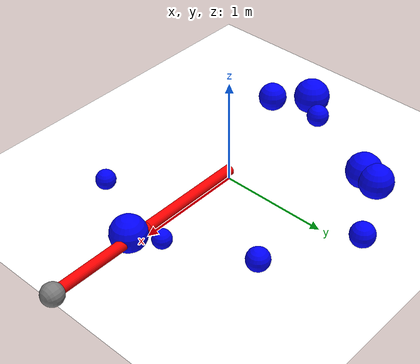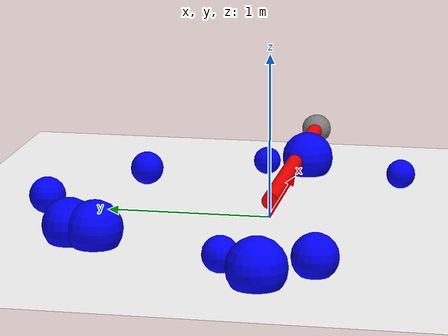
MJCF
<mujoco>
	<asset>
		<material name="red"   rgba="1 0 0 1"/>
		<material name="green" rgba="0 1 0 1"/>
		<material name="blue"  rgba="0 0 1 1"/>
		<material name="white" rgba="1 1 1 1"/>
		<material name="gray"  rgba=".5 .5 .5 1"/>
	</asset>

    <worldbody>
        <light diffuse=".5 .5 .5" pos="0 0 10" dir="0 0 -1"/>
        <geom type="plane" size="2 2 0.1" rgba="1 1 1 1"/>

        <body name="link 0" pos="0.5 0 0.1" euler="0 90 0">
            <joint name="joint 0" type="hinge" axis="-1 0 0" pos="0 0 -0.5"/>
            <geom name="geom link 0" type="cylinder" size="0.05 0.5" material="red"/>
            <body name="link 1" pos="0 0 1.0" euler="0 0 0">
                <joint name="joint 1" type="hinge" axis="-1 0 0" pos="0 0 -0.5"/>
                <geom name="geom link 1" type="cylinder" size="0.05 0.5" material="red"/>
                <site name="tip" size="0.1" pos="0 0 0.5"/>
            </body>
        </body>

        <body name="link 0 shade" pos="0.5 0 0.1" euler="0 90 0">
            <joint name="joint 0 shade" type="hinge" axis="-1 0 0" pos="0 0 -0.5"/>
            <geom name="geom link 0 shade" type="cylinder" size="0.05 0.5" material="green"/>
            <body name="link 1 shade" pos="0 0 1.0" euler="0 0 0">
                <joint name="joint 1 shade" type="hinge" axis="-1 0 0" pos="0 0 -0.5"/>
                <geom name="geom link 1 shade" type="cylinder" size="0.05 0.5" material="green"/>
            </body>
        </body>

        <body name="obstacle 0">
            <geom name="geom obstacle 0" type="sphere" size="0.09155754995403356" pos="0.8181105194033655 -0.7100825098286898 0.1" material="blue"/>
        </body>
        <body name="obstacle 1">
            <geom name="geom obstacle 1" type="sphere" size="0.10576952262704495" pos="-1.1610005011550526 0.08392072669884287 0.1" material="blue"/>
        </body>
        <body name="obstacle 2">
            <geom name="geom obstacle 2" type="sphere" size="0.16716003222450507" pos="-0.7792648913033293 0.8914153550871124 0.1" material="blue"/>
        </body>
        <body name="obstacle 3">
            <geom name="geom obstacle 3" type="sphere" size="0.17406166086784924" pos="-1.3784533882763146 -0.1570101104322026 0.1" material="blue"/>
        </body>
        <body name="obstacle 4">
            <geom name="geom obstacle 4" type="sphere" size="0.1051144145592004" pos="0.6789172825174297 0.9123774108466245 0.1" material="blue"/>
        </body>
        <body name="obstacle 5">
            <geom name="geom obstacle 5" type="sphere" size="0.13602039864201368" pos="-1.117351127828064 -0.4376778510702355 0.1" material="blue"/>
        </body>
        <body name="obstacle 6">
            <geom name="geom obstacle 6" type="sphere" size="0.11284059623151965" pos="-0.10053590386698552 1.3601516502228166 0.1" material="blue"/>
        </body>
        <body name="obstacle 7">
            <geom name="geom obstacle 7" type="sphere" size="0.16556442138439958" pos="1.1555692409288683 -0.06214603639689242 0.1" material="blue"/>
        </body>
        <body name="obstacle 8">
            <geom name="geom obstacle 8" type="sphere" size="0.16028417221759453" pos="-0.7283862947487094 1.0568147538507917 0.1" material="blue"/>
        </body>
        <body name="obstacle 9">
            <geom name="geom obstacle 9" type="sphere" size="0.08726610527160886" pos="1.019468803710156 0.18449356757439084 0.1" material="blue"/>
        </body>

    </worldbody>

    <contact>
        <exclude body1="link 0 shade" body2="link 1 shade"/>
        <exclude body1="link 0 shade" body2="link 0"/>
        <exclude body1="link 0 shade" body2="link 1"/>
        <exclude body1="link 1 shade" body2="link 0"/>
        <exclude body1="link 1 shade" body2="link 1"/>
        <exclude body1="link 0 shade" body2="obstacle 0"/>
        <exclude body1="link 0 shade" body2="obstacle 1"/>
        <exclude body1="link 0 shade" body2="obstacle 2"/>
        <exclude body1="link 0 shade" body2="obstacle 3"/>
        <exclude body1="link 0 shade" body2="obstacle 4"/>
        <exclude body1="link 0 shade" body2="obstacle 5"/>
        <exclude body1="link 0 shade" body2="obstacle 6"/>
        <exclude body1="link 0 shade" body2="obstacle 7"/>
        <exclude body1="link 0 shade" body2="obstacle 8"/>
        <exclude body1="link 0 shade" body2="obstacle 9"/>
        <exclude body1="link 1 shade" body2="obstacle 0"/>
        <exclude body1="link 1 shade" body2="obstacle 1"/>
        <exclude body1="link 1 shade" body2="obstacle 2"/>
        <exclude body1="link 1 shade" body2="obstacle 3"/>
        <exclude body1="link 1 shade" body2="obstacle 4"/>
        <exclude body1="link 1 shade" body2="obstacle 5"/>
        <exclude body1="link 1 shade" body2="obstacle 6"/>
        <exclude body1="link 1 shade" body2="obstacle 7"/>
        <exclude body1="link 1 shade" body2="obstacle 8"/>
        <exclude body1="link 1 shade" body2="obstacle 9"/>
    </contact>

    <sensor>
      <framepos objtype="site" objname="tip"/>
    </sensor>
</mujoco>
